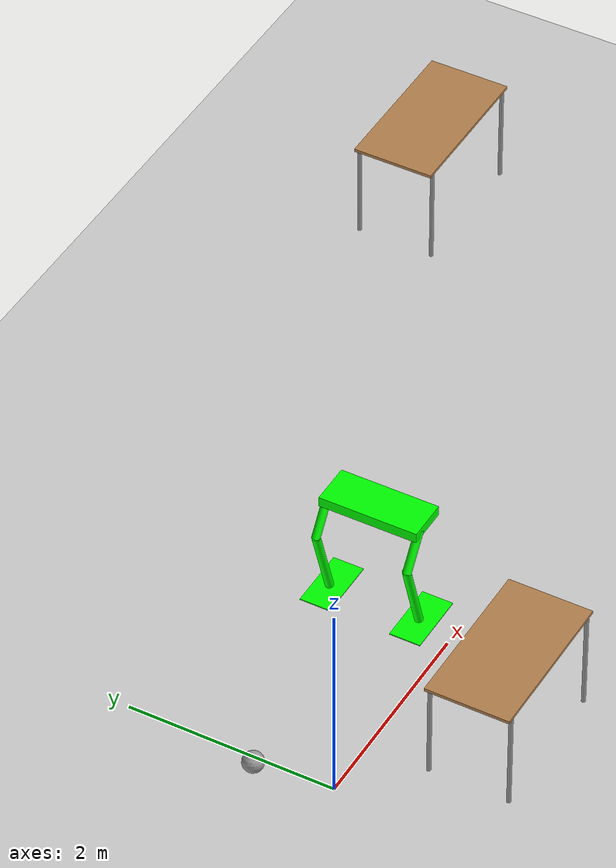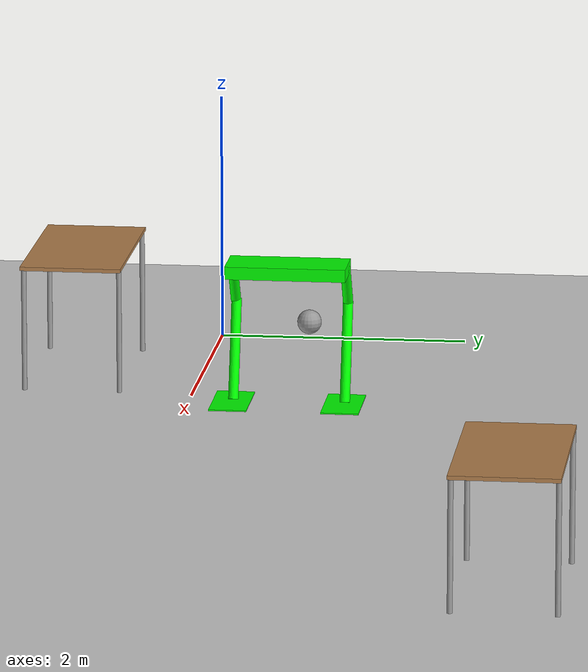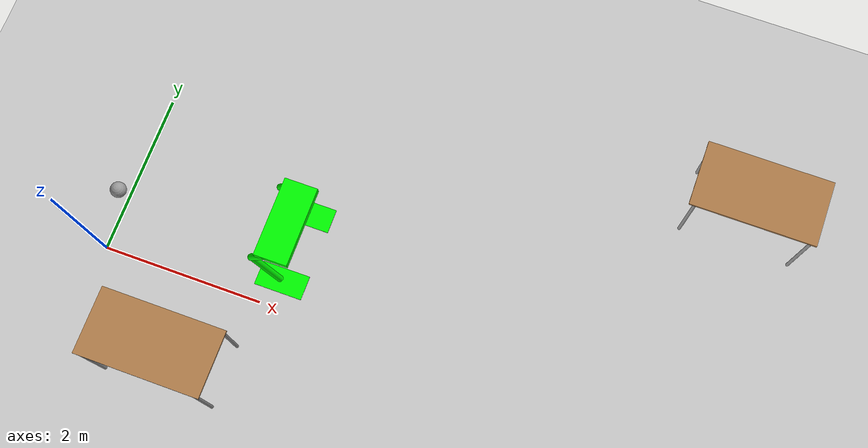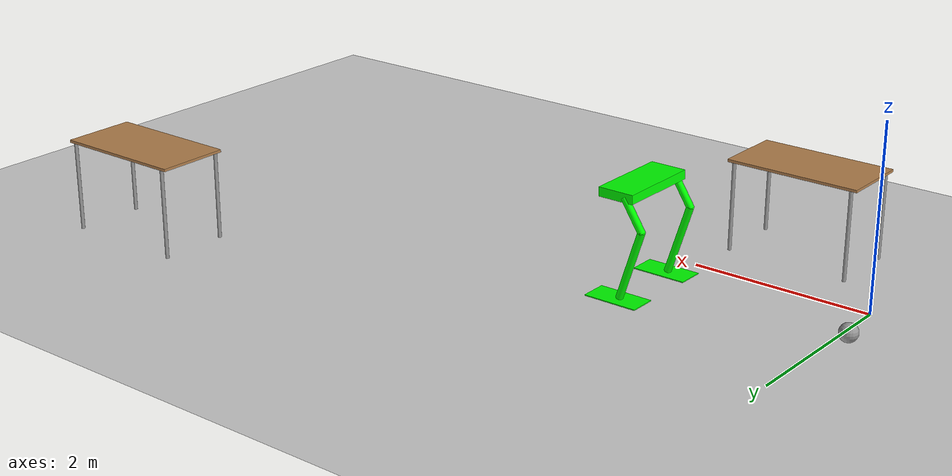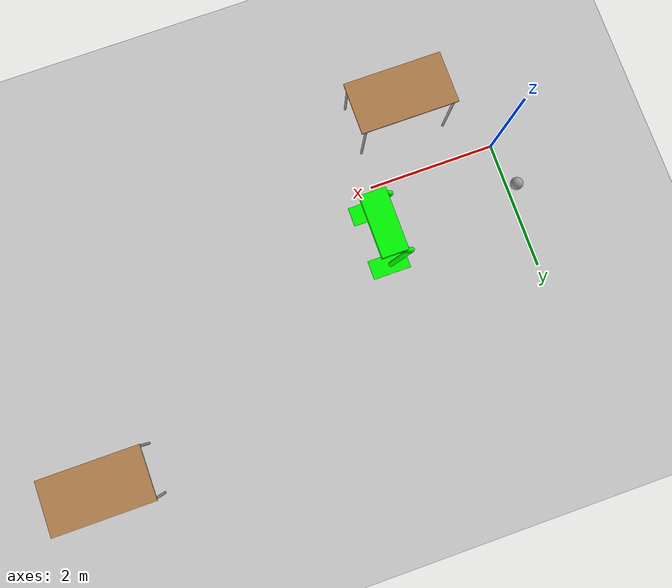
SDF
<sdf version="1.6">
 <world name="default">
  <model name="ground_plane">
   <static>1</static>
   <link name="link">
    <collision name="collision">
     <geometry><plane><normal>0 0 1</normal><size>100 100</size></plane></geometry>
     <surface>
      <contact><collide_bitmask>65535</collide_bitmask></contact>
      <friction><ode><mu>100</mu><mu2>50</mu2></ode></friction>
     </surface>
    </collision>
    <visual name="visual">
     <cast_shadows>0</cast_shadows>
     <geometry><plane><normal>0 0 1</normal><size>100 100</size></plane></geometry>
     <material>
      <script><uri>file://media/materials/scripts/gazebo.material</uri><name>Gazebo/Grey</name></script>
     </material>
    </visual>
   </link>
  </model>
  <model name="robot_green1">
   <link name="link_1">
    <inertial>
     <mass>1</mass>
     <inertia>
      <ixx>0.166667</ixx>
      <ixy>0</ixy>
      <ixz>0</ixz>
      <iyy>0.166667</iyy>
      <iyz>0</iyz>
      <izz>0.166667</izz>
     </inertia>
    </inertial>
    <pose>0.108816 -0.448387 -0.328119 0 -0 0</pose>
    <visual name="visual">
     <geometry><box><size>0.6 0.3 0.01</size></box></geometry>
     <material>
      <lighting>1</lighting>
      <script><uri>file://media/materials/scripts/gazebo.material</uri><name>Gazebo/Grey</name></script>
      <shader type="vertex"><normal_map>__default__</normal_map></shader>
      <ambient>0 1 0 1</ambient>
      <diffuse>0.7 0.7 0.7 1</diffuse>
      <specular>0.01 0.01 0.01 1</specular>
      <emissive>0 0 0 1</emissive>
     </material>
    </visual>
    <collision name="collision">
     <geometry><box><size>0.6 0.3 0.01</size></box></geometry>
     <surface>
      <friction>
       <ode><mu>1</mu><mu2>1</mu2><fdir1>0 0 0</fdir1><slip1>0</slip1><slip2>0</slip2></ode>
       <torsional>
        <coefficient>1</coefficient>
        <patch_radius>0</patch_radius>
        <surface_radius>0</surface_radius>
        <use_patch_radius>1</use_patch_radius>
        <ode><slip>0</slip></ode>
       </torsional>
      </friction>
      <bounce><restitution_coefficient>0</restitution_coefficient><threshold>1e+06</threshold></bounce>
      <contact>
       <collide_without_contact>0</collide_without_contact>
       <collide_without_contact_bitmask>1</collide_without_contact_bitmask>
       <collide_bitmask>1</collide_bitmask>
       <ode>
        <soft_cfm>0</soft_cfm>
        <soft_erp>0.2</soft_erp>
        <kp>1e+13</kp>
        <kd>1</kd>
        <max_vel>0.01</max_vel>
        <min_depth>0</min_depth>
       </ode>
       <bullet>
        <split_impulse>1</split_impulse>
        <split_impulse_penetration_threshold>-0.01</split_impulse_penetration_threshold>
        <soft_cfm>0</soft_cfm>
        <soft_erp>0.2</soft_erp>
        <kp>1e+13</kp>
        <kd>1</kd>
       </bullet>
      </contact>
     </surface>
    </collision>
   </link>
   <link name="link_1_clone">
    <inertial>
     <mass>1</mass>
     <inertia>
      <ixx>0.166667</ixx>
      <ixy>0</ixy>
      <ixz>0</ixz>
      <iyy>0.166667</iyy>
      <iyz>0</iyz>
      <izz>0.166667</izz>
     </inertia>
    </inertial>
    <pose>0.108816 0.43723 -0.328119 0 -0 0</pose>
    <visual name="visual">
     <geometry><box><size>0.6 0.3 0.01</size></box></geometry>
     <material>
      <lighting>1</lighting>
      <script><uri>file://media/materials/scripts/gazebo.material</uri><name>Gazebo/Grey</name></script>
      <shader type="vertex"><normal_map>__default__</normal_map></shader>
      <ambient>0 1 0 1</ambient>
      <diffuse>0.7 0.7 0.7 1</diffuse>
      <specular>0.01 0.01 0.01 1</specular>
      <emissive>0 0 0 1</emissive>
     </material>
    </visual>
    <collision name="collision">
     <geometry><box><size>0.6 0.3 0.01</size></box></geometry>
     <surface>
      <friction>
       <ode><mu>1</mu><mu2>1</mu2><fdir1>0 0 0</fdir1><slip1>0</slip1><slip2>0</slip2></ode>
       <torsional>
        <coefficient>1</coefficient>
        <patch_radius>0</patch_radius>
        <surface_radius>0</surface_radius>
        <use_patch_radius>1</use_patch_radius>
        <ode><slip>0</slip></ode>
       </torsional>
      </friction>
      <bounce><restitution_coefficient>0</restitution_coefficient><threshold>1e+06</threshold></bounce>
      <contact>
       <collide_without_contact>0</collide_without_contact>
       <collide_without_contact_bitmask>1</collide_without_contact_bitmask>
       <collide_bitmask>1</collide_bitmask>
       <ode>
        <soft_cfm>0</soft_cfm>
        <soft_erp>0.2</soft_erp>
        <kp>1e+13</kp>
        <kd>1</kd>
        <max_vel>0.01</max_vel>
        <min_depth>0</min_depth>
       </ode>
       <bullet>
        <split_impulse>1</split_impulse>
        <split_impulse_penetration_threshold>-0.01</split_impulse_penetration_threshold>
        <soft_cfm>0</soft_cfm>
        <soft_erp>0.2</soft_erp>
        <kp>1e+13</kp>
        <kd>1</kd>
       </bullet>
      </contact>
     </surface>
    </collision>
   </link>
   <link name="link_2">
    <inertial>
     <mass>1</mass>
     <inertia><ixx>0.145833</ixx><ixy>0</ixy><ixz>0</ixz><iyy>0.145833</iyy><iyz>0</iyz><izz>0.125</izz></inertia>
    </inertial>
    <pose>0.083446 -0.438387 -0.316611 0 -0.3 0</pose>
    <visual name="visual">
     <pose>0 0 0.4 0 -0 0</pose>
     <geometry><cylinder><radius>0.04</radius><length>0.8</length></cylinder></geometry>
     <material>
      <lighting>1</lighting>
      <script><uri>file://media/materials/scripts/gazebo.material</uri><name>Gazebo/Grey</name></script>
      <shader type="vertex"><normal_map>__default__</normal_map></shader>
      <ambient>0 1 0 1</ambient>
      <diffuse>0.7 0.7 0.7 1</diffuse>
      <specular>0.01 0.01 0.01 1</specular>
      <emissive>0 0 0 1</emissive>
     </material>
    </visual>
    <collision name="collision">
     <pose>0 0 0.4 0 -0 0</pose>
     <geometry><cylinder><radius>0.04</radius><length>0.8</length></cylinder></geometry>
     <surface>
      <friction>
       <ode><mu>1</mu><mu2>1</mu2><fdir1>0 0 0</fdir1><slip1>0</slip1><slip2>0</slip2></ode>
       <torsional>
        <coefficient>1</coefficient>
        <patch_radius>0</patch_radius>
        <surface_radius>0</surface_radius>
        <use_patch_radius>1</use_patch_radius>
        <ode><slip>0</slip></ode>
       </torsional>
      </friction>
      <bounce><restitution_coefficient>0</restitution_coefficient><threshold>1e+06</threshold></bounce>
      <contact>
       <collide_without_contact>0</collide_without_contact>
       <collide_without_contact_bitmask>1</collide_without_contact_bitmask>
       <collide_bitmask>1</collide_bitmask>
       <ode>
        <soft_cfm>0</soft_cfm>
        <soft_erp>0.2</soft_erp>
        <kp>1e+13</kp>
        <kd>1</kd>
        <max_vel>0.01</max_vel>
        <min_depth>0</min_depth>
       </ode>
       <bullet>
        <split_impulse>1</split_impulse>
        <split_impulse_penetration_threshold>-0.01</split_impulse_penetration_threshold>
        <soft_cfm>0</soft_cfm>
        <soft_erp>0.2</soft_erp>
        <kp>1e+13</kp>
        <kd>1</kd>
       </bullet>
      </contact>
     </surface>
    </collision>
   </link>
   <link name="link_2_clone">
    <inertial>
     <mass>1</mass>
     <inertia><ixx>0.145833</ixx><ixy>0</ixy><ixz>0</ixz><iyy>0.145833</iyy><iyz>0</iyz><izz>0.125</izz></inertia>
    </inertial>
    <pose>-0.26733 -0.444034 0.261881 0 0.58 0</pose>
    <visual name="visual">
     <pose>0 0 0.4 0 -0 0</pose>
     <geometry><cylinder><radius>0.04</radius><length>0.4</length></cylinder></geometry>
     <material>
      <lighting>1</lighting>
      <script><uri>file://media/materials/scripts/gazebo.material</uri><name>Gazebo/Grey</name></script>
      <shader type="vertex"><normal_map>__default__</normal_map></shader>
      <ambient>0 1 0 1</ambient>
      <diffuse>0.7 0.7 0.7 1</diffuse>
      <specular>0.01 0.01 0.01 1</specular>
      <emissive>0 0 0 1</emissive>
     </material>
    </visual>
    <collision name="collision">
     <pose>0 0 0.4 0 -0 0</pose>
     <geometry><cylinder><radius>0.04</radius><length>0.4</length></cylinder></geometry>
     <surface>
      <friction>
       <ode><mu>1</mu><mu2>1</mu2><fdir1>0 0 0</fdir1><slip1>0</slip1><slip2>0</slip2></ode>
       <torsional>
        <coefficient>1</coefficient>
        <patch_radius>0</patch_radius>
        <surface_radius>0</surface_radius>
        <use_patch_radius>1</use_patch_radius>
        <ode><slip>0</slip></ode>
       </torsional>
      </friction>
      <bounce><restitution_coefficient>0</restitution_coefficient><threshold>1e+06</threshold></bounce>
      <contact>
       <collide_without_contact>0</collide_without_contact>
       <collide_without_contact_bitmask>1</collide_without_contact_bitmask>
       <collide_bitmask>1</collide_bitmask>
       <ode>
        <soft_cfm>0</soft_cfm>
        <soft_erp>0.2</soft_erp>
        <kp>1e+13</kp>
        <kd>1</kd>
        <max_vel>0.01</max_vel>
        <min_depth>0</min_depth>
       </ode>
       <bullet>
        <split_impulse>1</split_impulse>
        <split_impulse_penetration_threshold>-0.01</split_impulse_penetration_threshold>
        <soft_cfm>0</soft_cfm>
        <soft_erp>0.2</soft_erp>
        <kp>1e+13</kp>
        <kd>1</kd>
       </bullet>
      </contact>
     </surface>
    </collision>
   </link>
   <link name="link_2_clone_0">
    <inertial>
     <mass>1</mass>
     <inertia><ixx>0.145833</ixx><ixy>0</ixy><ixz>0</ixz><iyy>0.145833</iyy><iyz>0</iyz><izz>0.125</izz></inertia>
    </inertial>
    <pose>0.083446 0.446613 -0.316611 0 -0.3 0</pose>
    <visual name="visual">
     <pose>0 0 0.4 0 -0 0</pose>
     <geometry><cylinder><radius>0.04</radius><length>0.8</length></cylinder></geometry>
     <material>
      <lighting>1</lighting>
      <script><uri>file://media/materials/scripts/gazebo.material</uri><name>Gazebo/Grey</name></script>
      <shader type="vertex"><normal_map>__default__</normal_map></shader>
      <ambient>0 1 0 1</ambient>
      <diffuse>0.7 0.7 0.7 1</diffuse>
      <specular>0.01 0.01 0.01 1</specular>
      <emissive>0 0 0 1</emissive>
     </material>
    </visual>
    <collision name="collision">
     <pose>0 0 0.4 0 -0 0</pose>
     <geometry><cylinder><radius>0.04</radius><length>0.8</length></cylinder></geometry>
     <surface>
      <friction>
       <ode><mu>1</mu><mu2>1</mu2><fdir1>0 0 0</fdir1><slip1>0</slip1><slip2>0</slip2></ode>
       <torsional>
        <coefficient>1</coefficient>
        <patch_radius>0</patch_radius>
        <surface_radius>0</surface_radius>
        <use_patch_radius>1</use_patch_radius>
        <ode><slip>0</slip></ode>
       </torsional>
      </friction>
      <bounce><restitution_coefficient>0</restitution_coefficient><threshold>1e+06</threshold></bounce>
      <contact>
       <collide_without_contact>0</collide_without_contact>
       <collide_without_contact_bitmask>1</collide_without_contact_bitmask>
       <collide_bitmask>1</collide_bitmask>
       <ode>
        <soft_cfm>0</soft_cfm>
        <soft_erp>0.2</soft_erp>
        <kp>1e+13</kp>
        <kd>1</kd>
        <max_vel>0.01</max_vel>
        <min_depth>0</min_depth>
       </ode>
       <bullet>
        <split_impulse>1</split_impulse>
        <split_impulse_penetration_threshold>-0.01</split_impulse_penetration_threshold>
        <soft_cfm>0</soft_cfm>
        <soft_erp>0.2</soft_erp>
        <kp>1e+13</kp>
        <kd>1</kd>
       </bullet>
      </contact>
     </surface>
    </collision>
   </link>
   <link name="link_2_clone_clone">
    <inertial>
     <mass>1</mass>
     <inertia><ixx>0.145833</ixx><ixy>0</ixy><ixz>0</ixz><iyy>0.145833</iyy><iyz>0</iyz><izz>0.125</izz></inertia>
    </inertial>
    <pose>-0.26733 0.446613 0.261881 0 0.58 0</pose>
    <visual name="visual">
     <pose>0 0 0.4 0 -0 0</pose>
     <geometry><cylinder><radius>0.04</radius><length>0.4</length></cylinder></geometry>
     <material>
      <lighting>1</lighting>
      <script><uri>file://media/materials/scripts/gazebo.material</uri><name>Gazebo/Grey</name></script>
      <shader type="vertex"><normal_map>__default__</normal_map></shader>
      <ambient>0 1 0 1</ambient>
      <diffuse>0.7 0.7 0.7 1</diffuse>
      <specular>0.01 0.01 0.01 1</specular>
      <emissive>0 0 0 1</emissive>
     </material>
    </visual>
    <collision name="collision">
     <pose>0 0 0.4 0 -0 0</pose>
     <geometry><cylinder><radius>0.04</radius><length>0.4</length></cylinder></geometry>
     <surface>
      <friction>
       <ode><mu>1</mu><mu2>1</mu2><fdir1>0 0 0</fdir1><slip1>0</slip1><slip2>0</slip2></ode>
       <torsional>
        <coefficient>1</coefficient>
        <patch_radius>0</patch_radius>
        <surface_radius>0</surface_radius>
        <use_patch_radius>1</use_patch_radius>
        <ode><slip>0</slip></ode>
       </torsional>
      </friction>
      <bounce><restitution_coefficient>0</restitution_coefficient><threshold>1e+06</threshold></bounce>
      <contact>
       <collide_without_contact>0</collide_without_contact>
       <collide_without_contact_bitmask>1</collide_without_contact_bitmask>
       <collide_bitmask>1</collide_bitmask>
       <ode>
        <soft_cfm>0</soft_cfm>
        <soft_erp>0.2</soft_erp>
        <kp>1e+13</kp>
        <kd>1</kd>
        <max_vel>0.01</max_vel>
        <min_depth>0</min_depth>
       </ode>
       <bullet>
        <split_impulse>1</split_impulse>
        <split_impulse_penetration_threshold>-0.01</split_impulse_penetration_threshold>
        <soft_cfm>0</soft_cfm>
        <soft_erp>0.2</soft_erp>
        <kp>1e+13</kp>
        <kd>1</kd>
       </bullet>
      </contact>
     </surface>
    </collision>
   </link>
   <link name="link_3">
    <inertial>
     <mass>1</mass>
     <inertia>
      <ixx>0.166667</ixx>
      <ixy>0</ixy>
      <ixz>0</ixz>
      <iyy>0.166667</iyy>
      <iyz>0</iyz>
      <izz>0.166667</izz>
     </inertia>
    </inertial>
    <pose>0.150138 0.000351 0.765701 0 -0 0</pose>
    <visual name="visual">
     <geometry><box><size>0.4 0.95 0.1</size></box></geometry>
     <material>
      <lighting>1</lighting>
      <script><uri>file://media/materials/scripts/gazebo.material</uri><name>Gazebo/Grey</name></script>
      <shader type="vertex"><normal_map>__default__</normal_map></shader>
      <ambient>0 1 0 1</ambient>
      <diffuse>0.7 0.7 0.7 1</diffuse>
      <specular>0.01 0.01 0.01 1</specular>
      <emissive>0 0 0 1</emissive>
     </material>
    </visual>
    <collision name="collision">
     <geometry><box><size>0.4 0.95 0.1</size></box></geometry>
     <surface>
      <friction>
       <ode><mu>1</mu><mu2>1</mu2><fdir1>0 0 0</fdir1><slip1>0</slip1><slip2>0</slip2></ode>
       <torsional>
        <coefficient>1</coefficient>
        <patch_radius>0</patch_radius>
        <surface_radius>0</surface_radius>
        <use_patch_radius>1</use_patch_radius>
        <ode><slip>0</slip></ode>
       </torsional>
      </friction>
      <bounce><restitution_coefficient>0</restitution_coefficient><threshold>1e+06</threshold></bounce>
      <contact>
       <collide_without_contact>0</collide_without_contact>
       <collide_without_contact_bitmask>1</collide_without_contact_bitmask>
       <collide_bitmask>1</collide_bitmask>
       <ode>
        <soft_cfm>0</soft_cfm>
        <soft_erp>0.2</soft_erp>
        <kp>1e+13</kp>
        <kd>1</kd>
        <max_vel>0.01</max_vel>
        <min_depth>0</min_depth>
       </ode>
       <bullet>
        <split_impulse>1</split_impulse>
        <split_impulse_penetration_threshold>-0.01</split_impulse_penetration_threshold>
        <soft_cfm>0</soft_cfm>
        <soft_erp>0.2</soft_erp>
        <kp>1e+13</kp>
        <kd>1</kd>
       </bullet>
      </contact>
     </surface>
    </collision>
   </link>
   <joint name="link_1_JOINT_0" type="revolute">
    <parent>link_1</parent>
    <child>link_2</child>
    <axis>
     <xyz>0 0 1</xyz>
     <use_parent_model_frame>0</use_parent_model_frame>
     <limit>
      <lower>-1.79769e+308</lower>
      <upper>1.79769e+308</upper>
      <effort>-1</effort>
      <velocity>-1</velocity>
     </limit>
     <dynamics>
      <spring_reference>0</spring_reference>
      <spring_stiffness>0</spring_stiffness>
      <damping>0</damping>
     </dynamics>
    </axis>
    <physics>
     <ode><limit><cfm>0</cfm><erp>0.2</erp></limit><suspension><cfm>0</cfm><erp>0.2</erp></suspension></ode>
    </physics>
   </joint>
   <joint name="link_1_clone_JOINT_2" type="revolute">
    <parent>link_1_clone</parent>
    <child>link_2_clone_0</child>
    <axis>
     <xyz>0 0 1</xyz>
     <use_parent_model_frame>0</use_parent_model_frame>
     <limit>
      <lower>-1.79769e+308</lower>
      <upper>1.79769e+308</upper>
      <effort>-1</effort>
      <velocity>-1</velocity>
     </limit>
     <dynamics>
      <spring_reference>0</spring_reference>
      <spring_stiffness>0</spring_stiffness>
      <damping>0</damping>
     </dynamics>
    </axis>
    <physics>
     <ode><limit><cfm>0</cfm><erp>0.2</erp></limit><suspension><cfm>0</cfm><erp>0.2</erp></suspension></ode>
    </physics>
   </joint>
   <joint name="link_2_JOINT_1" type="revolute">
    <parent>link_2</parent>
    <child>link_2_clone</child>
    <axis>
     <xyz>0 0 1</xyz>
     <use_parent_model_frame>0</use_parent_model_frame>
     <limit>
      <lower>-1.79769e+308</lower>
      <upper>1.79769e+308</upper>
      <effort>-1</effort>
      <velocity>-1</velocity>
     </limit>
     <dynamics>
      <spring_reference>0</spring_reference>
      <spring_stiffness>0</spring_stiffness>
      <damping>0</damping>
     </dynamics>
    </axis>
    <physics>
     <ode><limit><cfm>0</cfm><erp>0.2</erp></limit><suspension><cfm>0</cfm><erp>0.2</erp></suspension></ode>
    </physics>
   </joint>
   <joint name="link_2_clone_0_JOINT_3" type="revolute">
    <parent>link_2_clone_0</parent>
    <child>link_2_clone_clone</child>
    <axis>
     <xyz>0 0 1</xyz>
     <use_parent_model_frame>0</use_parent_model_frame>
     <limit>
      <lower>-1.79769e+308</lower>
      <upper>1.79769e+308</upper>
      <effort>-1</effort>
      <velocity>-1</velocity>
     </limit>
     <dynamics>
      <spring_reference>0</spring_reference>
      <spring_stiffness>0</spring_stiffness>
      <damping>0</damping>
     </dynamics>
    </axis>
    <physics>
     <ode><limit><cfm>0</cfm><erp>0.2</erp></limit><suspension><cfm>0</cfm><erp>0.2</erp></suspension></ode>
    </physics>
   </joint>
   <joint name="link_3_JOINT_4" type="revolute">
    <parent>link_3</parent>
    <child>link_2_clone</child>
    <axis>
     <xyz>0 0 1</xyz>
     <use_parent_model_frame>0</use_parent_model_frame>
     <limit>
      <lower>-1.79769e+308</lower>
      <upper>1.79769e+308</upper>
      <effort>-1</effort>
      <velocity>-1</velocity>
     </limit>
     <dynamics>
      <spring_reference>0</spring_reference>
      <spring_stiffness>0</spring_stiffness>
      <damping>0</damping>
     </dynamics>
    </axis>
    <physics>
     <ode><limit><cfm>0</cfm><erp>0.2</erp></limit><suspension><cfm>0</cfm><erp>0.2</erp></suspension></ode>
    </physics>
   </joint>
   <joint name="link_3_JOINT_7" type="revolute">
    <parent>link_3</parent>
    <child>link_2_clone_clone</child>
    <axis>
     <xyz>0 0 1</xyz>
     <use_parent_model_frame>0</use_parent_model_frame>
     <limit>
      <lower>-1.79769e+308</lower>
      <upper>1.79769e+308</upper>
      <effort>-1</effort>
      <velocity>-1</velocity>
     </limit>
     <dynamics>
      <spring_reference>0</spring_reference>
      <spring_stiffness>0</spring_stiffness>
      <damping>0</damping>
     </dynamics>
    </axis>
    <physics>
     <ode><limit><cfm>0</cfm><erp>0.2</erp></limit><suspension><cfm>0</cfm><erp>0.2</erp></suspension></ode>
    </physics>
   </joint>
   <static>0</static>
   <pose>2.04376 0.790472 0.333119 0 -0 0.001173</pose>
  </model>
  <model name="table_clone_1">
   <static>1</static>
   <link name="link">
    <collision name="surface">
     <pose>0 0 1 0 -0 0</pose>
     <geometry><box><size>1.5 0.8 0.03</size></box></geometry>
     <surface><friction><ode><mu>0.6</mu><mu2>0.6</mu2></ode></friction></surface>
    </collision>
    <visual name="visual1">
     <pose>0 0 1 0 -0 0</pose>
     <geometry><box><size>1.5 0.8 0.03</size></box></geometry>
     <material>
      <script><uri>file://media/materials/scripts/gazebo.material</uri><name>Gazebo/Wood</name></script>
     </material>
    </visual>
    <collision name="front_left_leg">
     <pose>0.68 0.38 0.5 0 -0 0</pose>
     <geometry><cylinder><radius>0.02</radius><length>1</length></cylinder></geometry>
    </collision>
    <visual name="front_left_leg">
     <pose>0.68 0.38 0.5 0 -0 0</pose>
     <geometry><cylinder><radius>0.02</radius><length>1</length></cylinder></geometry>
     <material>
      <script><uri>file://media/materials/scripts/gazebo.material</uri><name>Gazebo/Grey</name></script>
     </material>
    </visual>
    <collision name="front_right_leg">
     <pose>0.68 -0.38 0.5 0 -0 0</pose>
     <geometry><cylinder><radius>0.02</radius><length>1</length></cylinder></geometry>
    </collision>
    <visual name="front_right_leg">
     <pose>0.68 -0.38 0.5 0 -0 0</pose>
     <geometry><cylinder><radius>0.02</radius><length>1</length></cylinder></geometry>
     <material>
      <script><uri>file://media/materials/scripts/gazebo.material</uri><name>Gazebo/Grey</name></script>
     </material>
    </visual>
    <collision name="back_right_leg">
     <pose>-0.68 -0.38 0.5 0 -0 0</pose>
     <geometry><cylinder><radius>0.02</radius><length>1</length></cylinder></geometry>
    </collision>
    <visual name="back_right_leg">
     <pose>-0.68 -0.38 0.5 0 -0 0</pose>
     <geometry><cylinder><radius>0.02</radius><length>1</length></cylinder></geometry>
     <material>
      <script><uri>file://media/materials/scripts/gazebo.material</uri><name>Gazebo/Grey</name></script>
     </material>
    </visual>
    <collision name="back_left_leg">
     <pose>-0.68 0.38 0.5 0 -0 0</pose>
     <geometry><cylinder><radius>0.02</radius><length>1</length></cylinder></geometry>
    </collision>
    <visual name="back_left_leg">
     <pose>-0.68 0.38 0.5 0 -0 0</pose>
     <geometry><cylinder><radius>0.02</radius><length>1</length></cylinder></geometry>
     <material>
      <script><uri>file://media/materials/scripts/gazebo.material</uri><name>Gazebo/Grey</name></script>
     </material>
    </visual>
   </link>
   <pose>7.13881 2.96032 0 0 -0 0</pose>
  </model>
  <model name="table_clone_2">
   <static>1</static>
   <link name="link">
    <collision name="surface">
     <pose>0 0 1 0 -0 0</pose>
     <geometry><box><size>1.5 0.8 0.03</size></box></geometry>
     <surface><friction><ode><mu>0.6</mu><mu2>0.6</mu2></ode></friction></surface>
    </collision>
    <visual name="visual1">
     <pose>0 0 1 0 -0 0</pose>
     <geometry><box><size>1.5 0.8 0.03</size></box></geometry>
     <material>
      <script><uri>file://media/materials/scripts/gazebo.material</uri><name>Gazebo/Wood</name></script>
     </material>
    </visual>
    <collision name="front_left_leg">
     <pose>0.68 0.38 0.5 0 -0 0</pose>
     <geometry><cylinder><radius>0.02</radius><length>1</length></cylinder></geometry>
    </collision>
    <visual name="front_left_leg">
     <pose>0.68 0.38 0.5 0 -0 0</pose>
     <geometry><cylinder><radius>0.02</radius><length>1</length></cylinder></geometry>
     <material>
      <script><uri>file://media/materials/scripts/gazebo.material</uri><name>Gazebo/Grey</name></script>
     </material>
    </visual>
    <collision name="front_right_leg">
     <pose>0.68 -0.38 0.5 0 -0 0</pose>
     <geometry><cylinder><radius>0.02</radius><length>1</length></cylinder></geometry>
    </collision>
    <visual name="front_right_leg">
     <pose>0.68 -0.38 0.5 0 -0 0</pose>
     <geometry><cylinder><radius>0.02</radius><length>1</length></cylinder></geometry>
     <material>
      <script><uri>file://media/materials/scripts/gazebo.material</uri><name>Gazebo/Grey</name></script>
     </material>
    </visual>
    <collision name="back_right_leg">
     <pose>-0.68 -0.38 0.5 0 -0 0</pose>
     <geometry><cylinder><radius>0.02</radius><length>1</length></cylinder></geometry>
    </collision>
    <visual name="back_right_leg">
     <pose>-0.68 -0.38 0.5 0 -0 0</pose>
     <geometry><cylinder><radius>0.02</radius><length>1</length></cylinder></geometry>
     <material>
      <script><uri>file://media/materials/scripts/gazebo.material</uri><name>Gazebo/Grey</name></script>
     </material>
    </visual>
    <collision name="back_left_leg">
     <pose>-0.68 0.38 0.5 0 -0 0</pose>
     <geometry><cylinder><radius>0.02</radius><length>1</length></cylinder></geometry>
    </collision>
    <visual name="back_left_leg">
     <pose>-0.68 0.38 0.5 0 -0 0</pose>
     <geometry><cylinder><radius>0.02</radius><length>1</length></cylinder></geometry>
     <material>
      <script><uri>file://media/materials/scripts/gazebo.material</uri><name>Gazebo/Grey</name></script>
     </material>
    </visual>
   </link>
   <pose>1.27028 -0.960284 0 0 -0 0</pose>
  </model>
  <model name="my_ball">
   <link name="link">
    <inertial>
     <mass>1</mass>
     <inertia><ixx>0.1</ixx><ixy>0</ixy><ixz>0</ixz><iyy>0.1</iyy><iyz>0</iyz><izz>0.1</izz></inertia>
    </inertial>
    <visual name="visual">
     <geometry><sphere><radius>0.1</radius></sphere></geometry>
     <material>
      <script><name>Gazebo/Grey</name><uri>file://media/materials/scripts/gazebo.material</uri></script>
      <ambient>1 1 1 1</ambient>
      <diffuse>1 1 1 1</diffuse>
      <specular>1 1 1 1</specular>
      <emissive>1 1 1 1</emissive>
      <shader type="vertex"><normal_map>__default__</normal_map></shader>
     </material>
    </visual>
    <collision name="collision">
     <geometry><sphere><radius>0.1</radius></sphere></geometry>
     <surface>
      <friction>
       <ode><mu>1</mu><mu2>1</mu2><fdir1>0 0 0</fdir1><slip1>0</slip1><slip2>0</slip2></ode>
       <torsional>
        <coefficient>1</coefficient>
        <patch_radius>0</patch_radius>
        <surface_radius>0</surface_radius>
        <use_patch_radius>1</use_patch_radius>
        <ode><slip>0</slip></ode>
       </torsional>
      </friction>
      <bounce><restitution_coefficient>0</restitution_coefficient><threshold>1e+06</threshold></bounce>
      <contact>
       <collide_without_contact>0</collide_without_contact>
       <collide_without_contact_bitmask>1</collide_without_contact_bitmask>
       <collide_bitmask>1</collide_bitmask>
       <ode>
        <soft_cfm>0</soft_cfm>
        <soft_erp>0.2</soft_erp>
        <kp>1e+13</kp>
        <kd>1</kd>
        <max_vel>0.01</max_vel>
        <min_depth>0</min_depth>
       </ode>
       <bullet>
        <split_impulse>1</split_impulse>
        <split_impulse_penetration_threshold>-0.01</split_impulse_penetration_threshold>
        <soft_cfm>0</soft_cfm>
        <soft_erp>0.2</soft_erp>
        <kp>1e+13</kp>
        <kd>1</kd>
       </bullet>
      </contact>
     </surface>
    </collision>
   </link>
   <static>0</static>
   <pose>-0.133391 0.705452 0.1 0 -0 0</pose>
  </model>
 </world>
</sdf>
